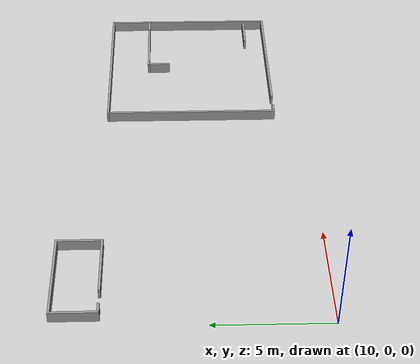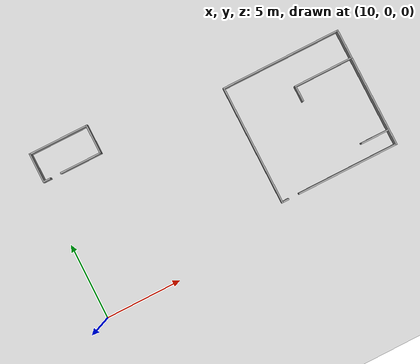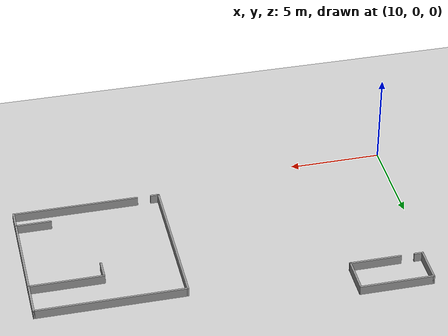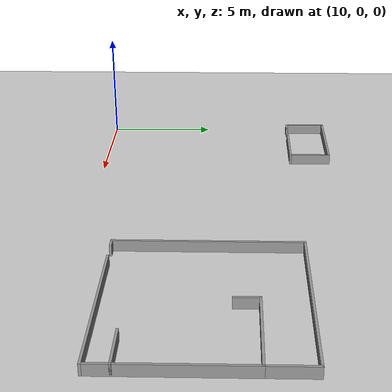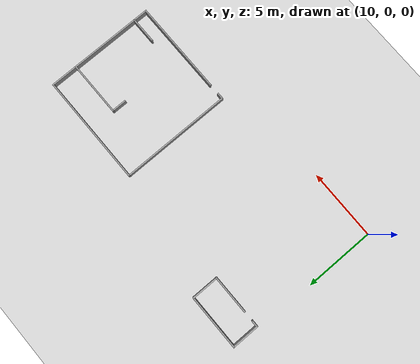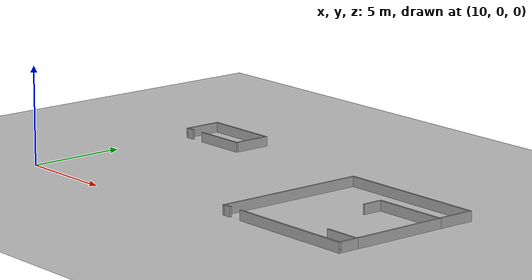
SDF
<sdf version="1.6">
 <world name="default">
  <model name="ground_plane">
   <static>1</static>
   <link name="link">
    <collision name="collision">
     <geometry><plane><normal>0 0 1</normal><size>80 80</size></plane></geometry>
     <surface>
      <contact><collide_bitmask>65535</collide_bitmask></contact>
      <friction><ode><mu>100</mu><mu2>50</mu2></ode></friction>
     </surface>
     <max_contacts>15</max_contacts>
    </collision>
    <visual name="visual">
     <cast_shadows>0</cast_shadows>
     <geometry><plane><normal>0 0 1</normal><size>80 80</size></plane></geometry>
     <material>
      <script><uri>file://media/materials/scripts/gazebo.material</uri><name>Gazebo/Grey</name></script>
     </material>
    </visual>
   </link>
  </model>
  <model name="shape2">
   <pose>12.3 10.2 0 0 -0 0</pose>
   <link name="Wall_0">
    <collision name="Wall_0_Collision">
     <geometry><box><size>3.98685 0.1 0.5</size></box></geometry>
     <pose>0 0 0.25 0 -0 0</pose>
    </collision>
    <visual name="Wall_0_Visual">
     <pose>0 0 0.25 0 -0 0</pose>
     <geometry><box><size>3.98685 0.1 0.5</size></box></geometry>
     <material>
      <script><uri>file://media/materials/scripts/gazebo.material</uri><name>Gazebo/Grey</name></script>
      <ambient>1 1 1 1</ambient>
     </material>
     <meta><layer>0</layer></meta>
    </visual>
    <pose>0.003288 0.95 0 0 -0 0</pose>
   </link>
   <link name="Wall_1">
    <collision name="Wall_1_Collision">
     <geometry><box><size>2 0.1 0.5</size></box></geometry>
     <pose>0 0 0.25 0 -0 0</pose>
    </collision>
    <visual name="Wall_1_Visual">
     <pose>0 0 0.25 0 -0 0</pose>
     <geometry><box><size>2 0.1 0.5</size></box></geometry>
     <material>
      <script><uri>file://media/materials/scripts/gazebo.material</uri><name>Gazebo/Grey</name></script>
      <ambient>1 1 1 1</ambient>
     </material>
     <meta><layer>0</layer></meta>
    </visual>
    <pose>1.94671 0 0 0 -0 -1.5708</pose>
   </link>
   <link name="Wall_2">
    <collision name="Wall_2_Collision">
     <geometry><box><size>2.8 0.1 0.5</size></box></geometry>
     <pose>0 0 0.25 0 -0 0</pose>
    </collision>
    <visual name="Wall_2_Visual">
     <pose>0 0 0.25 0 -0 0</pose>
     <geometry><box><size>2.8 0.1 0.5</size></box></geometry>
     <material>
      <script><uri>file://media/materials/scripts/gazebo.material</uri><name>Gazebo/Grey</name></script>
      <ambient>1 1 1 1</ambient>
     </material>
     <meta><layer>0</layer></meta>
    </visual>
    <pose>0.596712 -0.95 0 0 -0 3.14159</pose>
   </link>
   <link name="Wall_4">
    <collision name="Wall_4_Collision">
     <geometry><box><size>2 0.1 0.5</size></box></geometry>
     <pose>0 0 0.25 0 -0 0</pose>
    </collision>
    <visual name="Wall_4_Visual">
     <pose>0 0 0.25 0 -0 0</pose>
     <geometry><box><size>2 0.1 0.5</size></box></geometry>
     <material>
      <script><uri>file://media/materials/scripts/gazebo.material</uri><name>Gazebo/Grey</name></script>
      <ambient>1 1 1 1</ambient>
     </material>
     <meta><layer>0</layer></meta>
    </visual>
    <pose>-1.94671 0 0 0 -0 -1.5708</pose>
   </link>
   <link name="Wall_5">
    <collision name="Wall_5_Collision">
     <geometry><box><size>0.5 0.1 0.5</size></box></geometry>
     <pose>0 0 0.25 0 -0 0</pose>
    </collision>
    <visual name="Wall_5_Visual">
     <pose>0 0 0.25 0 -0 0</pose>
     <geometry><box><size>0.5 0.1 0.5</size></box></geometry>
     <material>
      <script><uri>file://media/materials/scripts/gazebo.material</uri><name>Gazebo/Grey</name></script>
      <ambient>1 1 1 1</ambient>
     </material>
     <meta><layer>0</layer></meta>
    </visual>
    <pose>-1.74671 -0.95 0 0 -0 0</pose>
   </link>
   <static>1</static>
  </model>
  <model name="shape6">
   <pose>26.8 5.4 0 0 -0 0</pose>
   <link name="Wall_0">
    <collision name="Wall_0_Collision">
     <geometry><box><size>8 0.1 0.5</size></box></geometry>
     <pose>0 0 0.25 0 -0 0</pose>
    </collision>
    <visual name="Wall_0_Visual">
     <pose>0 0 0.25 0 -0 0</pose>
     <geometry><box><size>8 0.1 0.5</size></box></geometry>
     <material>
      <script><uri>file://media/materials/scripts/gazebo.material</uri><name>Gazebo/Grey</name></script>
      <ambient>1 1 1 1</ambient>
     </material>
     <meta><layer>0</layer></meta>
    </visual>
    <pose>-3.95 0 0 0 -0 -1.5708</pose>
   </link>
   <link name="Wall_1">
    <collision name="Wall_1_Collision">
     <geometry><box><size>0.5 0.1 0.5</size></box></geometry>
     <pose>0 0 0.25 0 -0 0</pose>
    </collision>
    <visual name="Wall_1_Visual">
     <pose>0 0 0.25 0 -0 0</pose>
     <geometry><box><size>0.5 0.1 0.5</size></box></geometry>
     <material>
      <script><uri>file://media/materials/scripts/gazebo.material</uri><name>Gazebo/Grey</name></script>
      <ambient>1 1 1 1</ambient>
     </material>
     <meta><layer>0</layer></meta>
    </visual>
    <pose>-3.75 -3.95 0 0 -0 0</pose>
   </link>
   <link name="Wall_10">
    <collision name="Wall_10_Collision">
     <geometry><box><size>1.95 0.1 0.5</size></box></geometry>
     <pose>0 0 0.25 0 -0 0</pose>
    </collision>
    <visual name="Wall_10_Visual">
     <pose>0 0 0.25 0 -0 0</pose>
     <geometry><box><size>1.95 0.1 0.5</size></box></geometry>
     <material>
      <script><uri>file://media/materials/scripts/gazebo.material</uri><name>Gazebo/Grey</name></script>
      <ambient>1 1 1 1</ambient>
     </material>
     <meta><layer>0</layer></meta>
    </visual>
    <pose>3.025 -2.95 0 0 -0 3.14159</pose>
   </link>
   <link name="Wall_12">
    <collision name="Wall_12_Collision">
     <geometry><box><size>1.1 0.1 0.5</size></box></geometry>
     <pose>0 0 0.25 0 -0 0</pose>
    </collision>
    <visual name="Wall_12_Visual">
     <pose>0 0 0.25 0 -0 0</pose>
     <geometry><box><size>1.1 0.1 0.5</size></box></geometry>
     <material>
      <script><uri>file://media/materials/scripts/gazebo.material</uri><name>Gazebo/Grey</name></script>
      <ambient>1 1 1 1</ambient>
     </material>
     <meta><layer>0</layer></meta>
    </visual>
    <pose>3.95 -3.45 0 0 -0 -1.5708</pose>
   </link>
   <link name="Wall_13">
    <collision name="Wall_13_Collision">
     <geometry><box><size>6.8 0.1 0.5</size></box></geometry>
     <pose>0 0 0.25 0 -0 0</pose>
    </collision>
    <visual name="Wall_13_Visual">
     <pose>0 0 0.25 0 -0 0</pose>
     <geometry><box><size>6.8 0.1 0.5</size></box></geometry>
     <material>
      <script><uri>file://media/materials/scripts/gazebo.material</uri><name>Gazebo/Grey</name></script>
      <ambient>1 1 1 1</ambient>
     </material>
     <meta><layer>0</layer></meta>
    </visual>
    <pose>0.6 -3.95 0 0 -0 3.14159</pose>
   </link>
   <link name="Wall_3">
    <collision name="Wall_3_Collision">
     <geometry><box><size>8 0.1 0.5</size></box></geometry>
     <pose>0 0 0.25 0 -0 0</pose>
    </collision>
    <visual name="Wall_3_Visual">
     <pose>0 0 0.25 0 -0 0</pose>
     <geometry><box><size>8 0.1 0.5</size></box></geometry>
     <material>
      <script><uri>file://media/materials/scripts/gazebo.material</uri><name>Gazebo/Grey</name></script>
      <ambient>1 1 1 1</ambient>
     </material>
     <meta><layer>0</layer></meta>
    </visual>
    <pose>-0 3.95 0 0 -0 0</pose>
   </link>
   <link name="Wall_4">
    <collision name="Wall_4_Collision">
     <geometry><box><size>2 0.1 0.5</size></box></geometry>
     <pose>0 0 0.25 0 -0 0</pose>
    </collision>
    <visual name="Wall_4_Visual">
     <pose>0 0 0.25 0 -0 0</pose>
     <geometry><box><size>2 0.1 0.5</size></box></geometry>
     <material>
      <script><uri>file://media/materials/scripts/gazebo.material</uri><name>Gazebo/Grey</name></script>
      <ambient>1 1 1 1</ambient>
     </material>
     <meta><layer>0</layer></meta>
    </visual>
    <pose>3.95 3 0 0 -0 -1.5708</pose>
   </link>
   <link name="Wall_5">
    <collision name="Wall_5_Collision">
     <geometry><box><size>5.1 0.1 0.5</size></box></geometry>
     <pose>0 0 0.25 0 -0 0</pose>
    </collision>
    <visual name="Wall_5_Visual">
     <pose>0 0 0.25 0 -0 0</pose>
     <geometry><box><size>5.1 0.1 0.5</size></box></geometry>
     <material>
      <script><uri>file://media/materials/scripts/gazebo.material</uri><name>Gazebo/Grey</name></script>
      <ambient>1 1 1 1</ambient>
     </material>
     <meta><layer>0</layer></meta>
    </visual>
    <pose>3.95 -0.45 0 0 -0 -1.5708</pose>
   </link>
   <link name="Wall_7">
    <collision name="Wall_7_Collision">
     <geometry><box><size>4 0.1 0.5</size></box></geometry>
     <pose>0 0 0.25 0 -0 0</pose>
    </collision>
    <visual name="Wall_7_Visual">
     <pose>0 0 0.25 0 -0 0</pose>
     <geometry><box><size>4 0.1 0.5</size></box></geometry>
     <material>
      <script><uri>file://media/materials/scripts/gazebo.material</uri><name>Gazebo/Grey</name></script>
      <ambient>1 1 1 1</ambient>
     </material>
     <meta><layer>0</layer></meta>
    </visual>
    <pose>2 2.05 0 0 -0 3.14159</pose>
   </link>
   <link name="Wall_8">
    <collision name="Wall_8_Collision">
     <geometry><box><size>1.1 0.1 0.5</size></box></geometry>
     <pose>0 0 0.25 0 -0 0</pose>
    </collision>
    <visual name="Wall_8_Visual">
     <pose>0 0 0.25 0 -0 0</pose>
     <geometry><box><size>1.1 0.1 0.5</size></box></geometry>
     <material>
      <script><uri>file://media/materials/scripts/gazebo.material</uri><name>Gazebo/Grey</name></script>
      <ambient>1 1 1 1</ambient>
     </material>
     <meta><layer>0</layer></meta>
    </visual>
    <pose>0.05 1.55 0 0 -0 -1.5708</pose>
   </link>
   <static>1</static>
  </model>
 </world>
</sdf>
